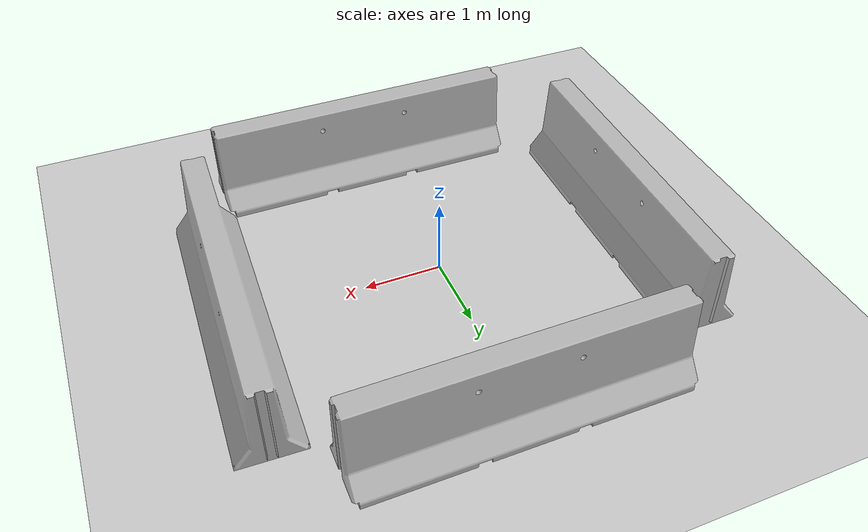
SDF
<sdf version="1.6">
 <world name="default">
  <scene><ambient>0.4 0.4 0.4 1</ambient><background>0.7 0.7 0.7 1</background><shadows>0</shadows></scene>
  <model name="ground_plane">
   <static>1</static>
   <link name="link">
    <collision name="collision">
     <geometry><plane><normal>0 0 1</normal><size>100 100</size></plane></geometry>
     <surface><friction><ode><mu>100</mu><mu2>50</mu2></ode></friction></surface>
    </collision>
    <visual name="visual">
     <cast_shadows>0</cast_shadows>
     <geometry><plane><normal>0 0 1</normal><size>100 100</size></plane></geometry>
     <material>
      <script><uri>file://media/materials/scripts/gazebo.material</uri><name>Gazebo/Grey</name></script>
     </material>
    </visual>
   </link>
  </model>
  <gravity>0 0 -9.8</gravity>
  <magnetic_field>6e-06 2.3e-05 -4.2e-05</magnetic_field>
  <atmosphere type="adiabatic"/>
  <physics name="default_physics" default="0" type="ode">
   <max_step_size>0.001</max_step_size>
   <real_time_factor>1</real_time_factor>
   <real_time_update_rate>1000</real_time_update_rate>
  </physics>
  <spherical_coordinates>
   <surface_model>EARTH_WGS84</surface_model>
   <latitude_deg>0</latitude_deg>
   <longitude_deg>0</longitude_deg>
   <elevation>0</elevation>
   <heading_deg>0</heading_deg>
  </spherical_coordinates>
  <light name="user_directional_light_0" type="directional">
   <pose>1.05011 -0.864098 1 0 -0 0</pose>
   <diffuse>0.5 0.5 0.5 1</diffuse>
   <specular>0.1 0.1 0.1 1</specular>
   <direction>0.1 0.1 -0.9</direction>
   <attenuation>
    <range>20</range>
    <constant>0.5</constant>
    <linear>0.01</linear>
    <quadratic>0.001</quadratic>
   </attenuation>
  </light>
  <model name="jersey_barrier">
   <static>1</static>
   <link name="link">
    <visual name="visual">
     <geometry>
      <mesh><uri>model://jersey_barrier/meshes/jersey_barrier.dae</uri><scale>1 1 1</scale></mesh>
     </geometry>
    </visual>
    <collision name="upright">
     <pose>0 0 0.5715 0 -0 0</pose>
     <geometry><box><size>4.06542 0.3063 1.143</size></box></geometry>
    </collision>
    <collision name="base">
     <pose>0 0 0.032258 0 -0 0</pose>
     <geometry><box><size>4.06542 0.8107 0.064516</size></box></geometry>
    </collision>
    <collision name="base2">
     <pose>0 0 0.1 0 -0 0</pose>
     <geometry><box><size>4.06542 0.65 0.1</size></box></geometry>
    </collision>
    <collision name="base3">
     <pose>0 0 0.2 0 -0 0</pose>
     <geometry><box><size>4.06542 0.5 0.1</size></box></geometry>
    </collision>
    <collision name="left-angle">
     <pose>0 -0.224 0.2401 0.9 -0 0</pose>
     <geometry><box><size>4.06542 0.5 0.064516</size></box></geometry>
    </collision>
    <collision name="right-angle">
     <pose>0 0.224 0.2401 -0.9 0 0</pose>
     <geometry><box><size>4.06542 0.5 0.064516</size></box></geometry>
    </collision>
   </link>
   <pose>0.1243 2.55126 0 0 -0 0</pose>
  </model>
  <model name="jersey_barrier_clone">
   <static>1</static>
   <link name="link">
    <visual name="visual">
     <geometry>
      <mesh><uri>model://jersey_barrier/meshes/jersey_barrier.dae</uri><scale>1 1 1</scale></mesh>
     </geometry>
    </visual>
    <collision name="upright">
     <pose>0 0 0.5715 0 -0 0</pose>
     <geometry><box><size>4.06542 0.3063 1.143</size></box></geometry>
    </collision>
    <collision name="base">
     <pose>0 0 0.032258 0 -0 0</pose>
     <geometry><box><size>4.06542 0.8107 0.064516</size></box></geometry>
    </collision>
    <collision name="base2">
     <pose>0 0 0.1 0 -0 0</pose>
     <geometry><box><size>4.06542 0.65 0.1</size></box></geometry>
    </collision>
    <collision name="base3">
     <pose>0 0 0.2 0 -0 0</pose>
     <geometry><box><size>4.06542 0.5 0.1</size></box></geometry>
    </collision>
    <collision name="left-angle">
     <pose>0 -0.224 0.2401 0.9 -0 0</pose>
     <geometry><box><size>4.06542 0.5 0.064516</size></box></geometry>
    </collision>
    <collision name="right-angle">
     <pose>0 0.224 0.2401 -0.9 0 0</pose>
     <geometry><box><size>4.06542 0.5 0.064516</size></box></geometry>
    </collision>
   </link>
   <pose>0.199106 -2.38463 0 0 -0 0</pose>
  </model>
  <model name="jersey_barrier_clone_0">
   <static>1</static>
   <link name="link">
    <visual name="visual">
     <geometry>
      <mesh><uri>model://jersey_barrier/meshes/jersey_barrier.dae</uri><scale>1 1 1</scale></mesh>
     </geometry>
    </visual>
    <collision name="upright">
     <pose>0 0 0.5715 0 -0 0</pose>
     <geometry><box><size>4.06542 0.3063 1.143</size></box></geometry>
    </collision>
    <collision name="base">
     <pose>0 0 0.032258 0 -0 0</pose>
     <geometry><box><size>4.06542 0.8107 0.064516</size></box></geometry>
    </collision>
    <collision name="base2">
     <pose>0 0 0.1 0 -0 0</pose>
     <geometry><box><size>4.06542 0.65 0.1</size></box></geometry>
    </collision>
    <collision name="base3">
     <pose>0 0 0.2 0 -0 0</pose>
     <geometry><box><size>4.06542 0.5 0.1</size></box></geometry>
    </collision>
    <collision name="left-angle">
     <pose>0 -0.224 0.2401 0.9 -0 0</pose>
     <geometry><box><size>4.06542 0.5 0.064516</size></box></geometry>
    </collision>
    <collision name="right-angle">
     <pose>0 0.224 0.2401 -0.9 0 0</pose>
     <geometry><box><size>4.06542 0.5 0.064516</size></box></geometry>
    </collision>
   </link>
   <pose>-2.55011 0.203519 0 0 -0 1.54792</pose>
  </model>
  <model name="jersey_barrier_clone_1">
   <static>1</static>
   <link name="link">
    <visual name="visual">
     <geometry>
      <mesh><uri>model://jersey_barrier/meshes/jersey_barrier.dae</uri><scale>1 1 1</scale></mesh>
     </geometry>
    </visual>
    <collision name="upright">
     <pose>0 0 0.5715 0 -0 0</pose>
     <geometry><box><size>4.06542 0.3063 1.143</size></box></geometry>
    </collision>
    <collision name="base">
     <pose>0 0 0.032258 0 -0 0</pose>
     <geometry><box><size>4.06542 0.8107 0.064516</size></box></geometry>
    </collision>
    <collision name="base2">
     <pose>0 0 0.1 0 -0 0</pose>
     <geometry><box><size>4.06542 0.65 0.1</size></box></geometry>
    </collision>
    <collision name="base3">
     <pose>0 0 0.2 0 -0 0</pose>
     <geometry><box><size>4.06542 0.5 0.1</size></box></geometry>
    </collision>
    <collision name="left-angle">
     <pose>0 -0.224 0.2401 0.9 -0 0</pose>
     <geometry><box><size>4.06542 0.5 0.064516</size></box></geometry>
    </collision>
    <collision name="right-angle">
     <pose>0 0.224 0.2401 -0.9 0 0</pose>
     <geometry><box><size>4.06542 0.5 0.064516</size></box></geometry>
    </collision>
   </link>
   <pose>2.66453 0.079864 0 0 0 -1.60961</pose>
  </model>
 </world>
</sdf>
